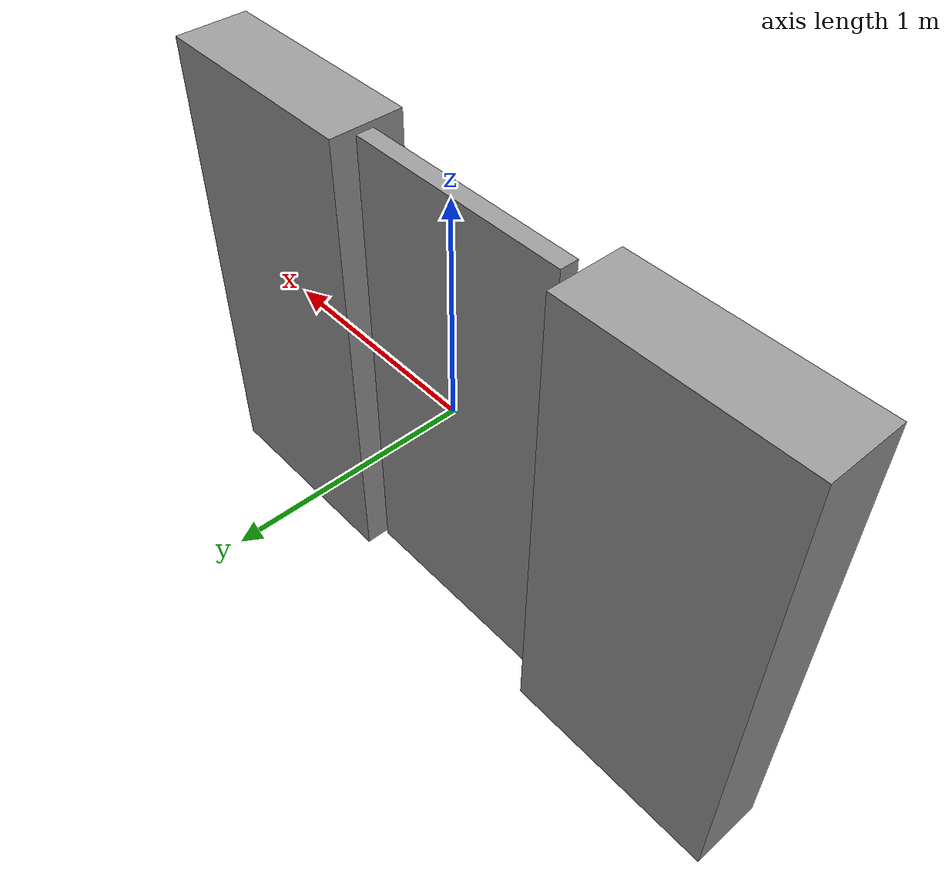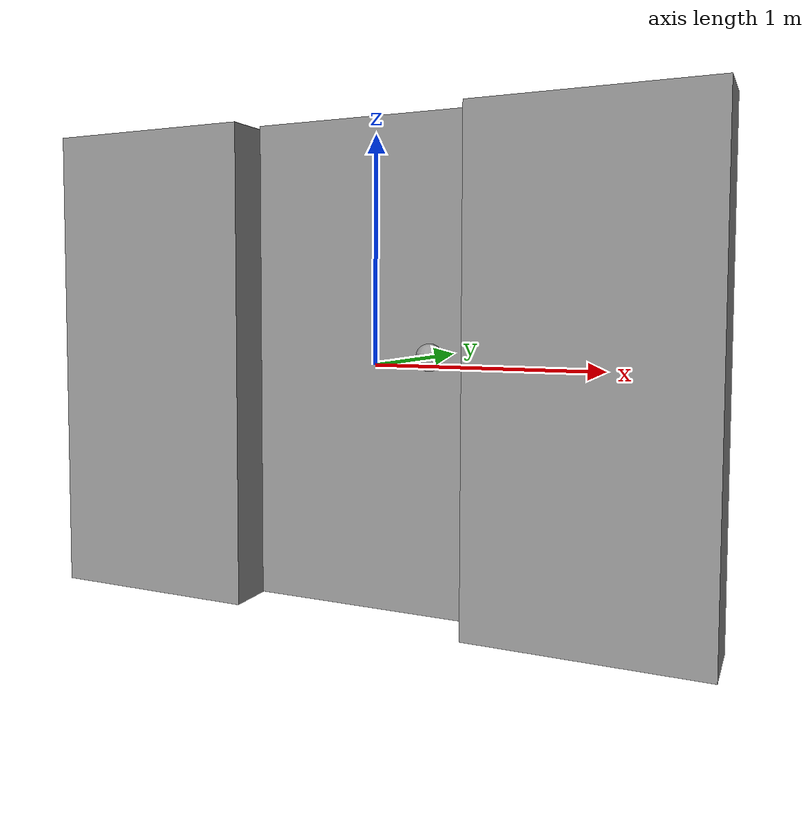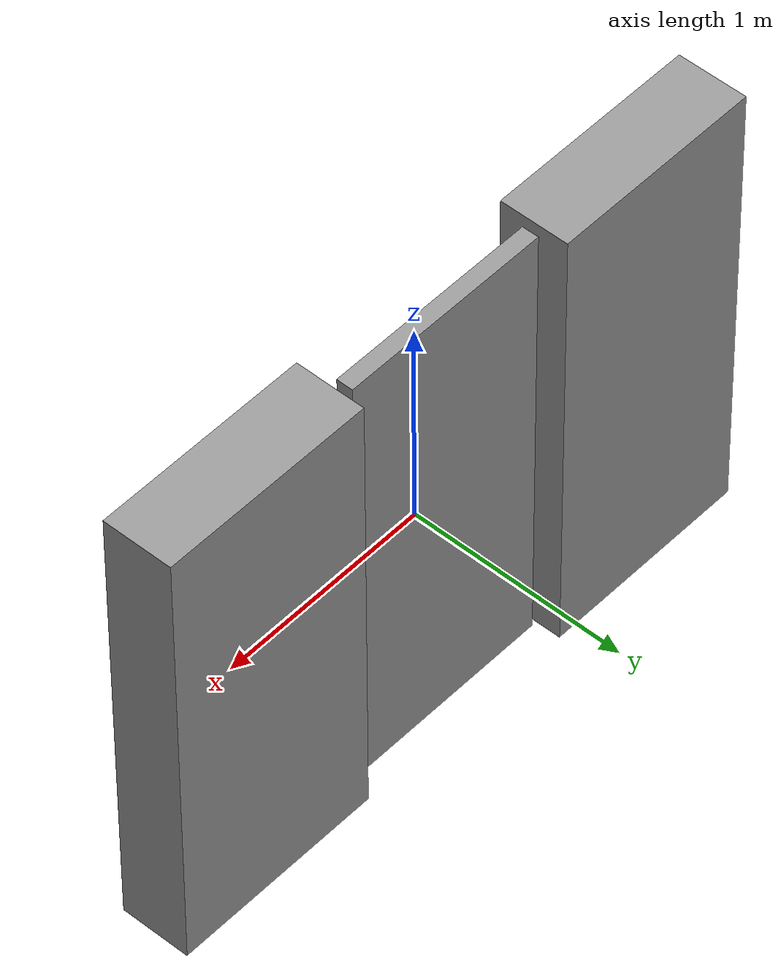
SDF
<?xml version='1.0'?>
<sdf version='1.6'>
  <model name='1'>
    <link name='link_0'>
      <inertial>
        <mass>0.71568</mass>
        <inertia>
          <ixx>0.29641</ixx>
          <ixy>0</ixy>
          <ixz>0</ixz>
          <iyy>0.349772</iyy>
          <iyz>0</iyz>
          <izz>0.0659187</izz>
        </inertia>
        <pose frame=''>0 0 0 0 -0 0</pose>
      </inertial>
      <pose frame=''>-1.13203 0.015868 -0.019431 0 -0 0</pose>
      <visual name='visual'>
        <pose frame=''>0 0 0 0 -0 0</pose>
        <geometry>
          <box>
            <size>1 0.324463 2.20561</size>
          </box>
        </geometry>
        <material>
          <lighting>1</lighting>
          <script>
            <uri>file://media/materials/scripts/gazebo.material</uri>
            <name>Gazebo/Grey</name>
          </script>
          <emissive>0 0 0 1</emissive>
        </material>
        <transparency>0</transparency>
        <cast_shadows>1</cast_shadows>
      </visual>
      <collision name='collision'>
        <laser_retro>0</laser_retro>
        <max_contacts>10</max_contacts>
        <pose frame=''>0 0 0 0 -0 0</pose>
        <geometry>
          <box>
            <size>1 0.324463 2.20561</size>
          </box>
        </geometry>
        <surface>
          <friction>
            <ode>
              <mu>1</mu>
              <mu2>1</mu2>
              <fdir1>0 0 0</fdir1>
              <slip1>0</slip1>
              <slip2>0</slip2>
            </ode>
            <torsional>
              <coefficient>1</coefficient>
              <patch_radius>0</patch_radius>
              <surface_radius>0</surface_radius>
              <use_patch_radius>1</use_patch_radius>
              <ode>
                <slip>0</slip>
              </ode>
            </torsional>
          </friction>
          <bounce>
            <restitution_coefficient>0</restitution_coefficient>
            <threshold>1e+06</threshold>
          </bounce>
          <contact>
            <collide_without_contact>0</collide_without_contact>
            <collide_without_contact_bitmask>1</collide_without_contact_bitmask>
            <collide_bitmask>1</collide_bitmask>
            <ode>
              <soft_cfm>0</soft_cfm>
              <soft_erp>0.2</soft_erp>
              <kp>1e+13</kp>
              <kd>1</kd>
              <max_vel>0.01</max_vel>
              <min_depth>0</min_depth>
            </ode>
            <bullet>
              <split_impulse>1</split_impulse>
              <split_impulse_penetration_threshold>-0.01</split_impulse_penetration_threshold>
              <soft_cfm>0</soft_cfm>
              <soft_erp>0.2</soft_erp>
              <kp>1e+13</kp>
              <kd>1</kd>
            </bullet>
          </contact>
        </surface>
      </collision>
    </link>
    <link name='link_0_clone'>
      <inertial>
        <mass>0.71568</mass>
        <inertia>
          <ixx>0.29641</ixx>
          <ixy>0</ixy>
          <ixz>0</ixz>
          <iyy>0.349772</iyy>
          <iyz>0</iyz>
          <izz>0.0659187</izz>
        </inertia>
        <pose frame=''>0 0 0 0 -0 0</pose>
      </inertial>
      <pose frame=''>0.94829 0.002227 -0.01943 0 -0 0</pose>
      <visual name='visual'>
        <pose frame=''>0 0 0 0 -0 0</pose>
        <geometry>
          <box>
            <size>1 0.324463 2.20561</size>
          </box>
        </geometry>
        <material>
          <lighting>1</lighting>
          <script>
            <uri>file://media/materials/scripts/gazebo.material</uri>
            <name>Gazebo/Grey</name>
          </script>
          <emissive>0 0 0 1</emissive>
          <shader type='pixel'/>
        </material>
        <transparency>0</transparency>
        <cast_shadows>1</cast_shadows>
      </visual>
      <collision name='collision'>
        <laser_retro>0</laser_retro>
        <max_contacts>10</max_contacts>
        <pose frame=''>0 0 0 0 -0 0</pose>
        <geometry>
          <box>
            <size>1 0.324463 2.20561</size>
          </box>
        </geometry>
        <surface>
          <friction>
            <ode>
              <mu>1</mu>
              <mu2>1</mu2>
              <fdir1>0 0 0</fdir1>
              <slip1>0</slip1>
              <slip2>0</slip2>
            </ode>
            <torsional>
              <coefficient>1</coefficient>
              <patch_radius>0</patch_radius>
              <surface_radius>0</surface_radius>
              <use_patch_radius>1</use_patch_radius>
              <ode>
                <slip>0</slip>
              </ode>
            </torsional>
          </friction>
          <bounce>
            <restitution_coefficient>0</restitution_coefficient>
            <threshold>1e+06</threshold>
          </bounce>
          <contact>
            <collide_without_contact>0</collide_without_contact>
            <collide_without_contact_bitmask>1</collide_without_contact_bitmask>
            <collide_bitmask>1</collide_bitmask>
            <ode>
              <soft_cfm>0</soft_cfm>
              <soft_erp>0.2</soft_erp>
              <kp>1e+13</kp>
              <kd>1</kd>
              <max_vel>0.01</max_vel>
              <min_depth>0</min_depth>
            </ode>
            <bullet>
              <split_impulse>1</split_impulse>
              <split_impulse_penetration_threshold>-0.01</split_impulse_penetration_threshold>
              <soft_cfm>0</soft_cfm>
              <soft_erp>0.2</soft_erp>
              <kp>1e+13</kp>
              <kd>1</kd>
            </bullet>
          </contact>
        </surface>
      </collision>
    </link>
    <link name='link_1'>
      <inertial>
        <mass>0.16614</mass>
        <inertia>
          <ixx>0.0656255</ixx>
          <ixy>0</ixy>
          <ixz>0</ixz>
          <iyy>0.0793898</iyy>
          <iyz>0</iyz>
          <izz>0.0139257</izz>
        </inertia>
        <pose frame=''>0 0 0 0 -0 0</pose>
      </inertial>
      <pose frame=''>-0.088127 0.0381 -0.004538 0 -0 0</pose>
      <visual name='visual'>
        <pose frame=''>0 0 0 0 -0 0</pose>
        <geometry>
          <box>
            <size>1 0.076351 2.17582</size>
          </box>
        </geometry>
        <material>
          <lighting>1</lighting>
          <script>
            <uri>file://media/materials/scripts/gazebo.material</uri>
            <name>Gazebo/Grey</name>
          </script>
          <emissive>0 0 0 1</emissive>
        </material>
        <transparency>0</transparency>
        <cast_shadows>1</cast_shadows>
      </visual>
      <collision name='collision'>
        <laser_retro>0</laser_retro>
        <max_contacts>10</max_contacts>
        <pose frame=''>0 0 0 0 -0 0</pose>
        <geometry>
          <box>
            <size>1 0.076351 2.17582</size>
          </box>
        </geometry>
        <surface>
          <friction>
            <ode>
              <mu>1</mu>
              <mu2>1</mu2>
              <fdir1>0 0 0</fdir1>
              <slip1>0</slip1>
              <slip2>0</slip2>
            </ode>
            <torsional>
              <coefficient>1</coefficient>
              <patch_radius>0</patch_radius>
              <surface_radius>0</surface_radius>
              <use_patch_radius>1</use_patch_radius>
              <ode>
                <slip>0</slip>
              </ode>
            </torsional>
          </friction>
          <bounce>
            <restitution_coefficient>0</restitution_coefficient>
            <threshold>1e+06</threshold>
          </bounce>
          <contact>
            <collide_without_contact>0</collide_without_contact>
            <collide_without_contact_bitmask>1</collide_without_contact_bitmask>
            <collide_bitmask>1</collide_bitmask>
            <ode>
              <soft_cfm>0</soft_cfm>
              <soft_erp>0.2</soft_erp>
              <kp>1e+13</kp>
              <kd>1</kd>
              <max_vel>0.01</max_vel>
              <min_depth>0</min_depth>
            </ode>
            <bullet>
              <split_impulse>1</split_impulse>
              <split_impulse_penetration_threshold>-0.01</split_impulse_penetration_threshold>
              <soft_cfm>0</soft_cfm>
              <soft_erp>0.2</soft_erp>
              <kp>1e+13</kp>
              <kd>1</kd>
            </bullet>
          </contact>
        </surface>
      </collision>
    </link>
    <link name='link_3'>
      <inertial>
        <mass>0.00165965</mass>
        <inertia>
          <ixx>2.32654e-06</ixx>
          <ixy>0</ixy>
          <ixz>0</ixz>
          <iyy>2.32654e-06</iyy>
          <iyz>0</iyz>
          <izz>2.32654e-06</izz>
        </inertia>
        <pose frame=''>0 0 0 0 -0 0</pose>
      </inertial>
      <pose frame=''>0.271873 -0.056195 0.0434 0 -0 0</pose>
      <visual name='visual'>
        <pose frame=''>0 0 0 0 -0 0</pose>
        <geometry>
          <sphere>
            <radius>0.0591993</radius>
          </sphere>
        </geometry>
        <material>
          <lighting>1</lighting>
          <script>
            <uri>file://media/materials/scripts/gazebo.material</uri>
            <name>Gazebo/Grey</name>
          </script>
          <emissive>0 0 0 1</emissive>
        </material>
        <transparency>0</transparency>
        <cast_shadows>1</cast_shadows>
      </visual>
      <collision name='collision'>
        <laser_retro>0</laser_retro>
        <max_contacts>10</max_contacts>
        <pose frame=''>0 0 0 0 -0 0</pose>
        <geometry>
          <sphere>
            <radius>0.059199</radius>
          </sphere>
        </geometry>
        <surface>
          <friction>
            <ode>
              <mu>1</mu>
              <mu2>1</mu2>
              <fdir1>0 0 0</fdir1>
              <slip1>0</slip1>
              <slip2>0</slip2>
            </ode>
            <torsional>
              <coefficient>1</coefficient>
              <patch_radius>0</patch_radius>
              <surface_radius>0</surface_radius>
              <use_patch_radius>1</use_patch_radius>
              <ode>
                <slip>0</slip>
              </ode>
            </torsional>
          </friction>
          <bounce>
            <restitution_coefficient>0</restitution_coefficient>
            <threshold>1e+06</threshold>
          </bounce>
          <contact>
            <collide_without_contact>0</collide_without_contact>
            <collide_without_contact_bitmask>1</collide_without_contact_bitmask>
            <collide_bitmask>1</collide_bitmask>
            <ode>
              <soft_cfm>0</soft_cfm>
              <soft_erp>0.2</soft_erp>
              <kp>1e+13</kp>
              <kd>1</kd>
              <max_vel>0.01</max_vel>
              <min_depth>0</min_depth>
            </ode>
            <bullet>
              <split_impulse>1</split_impulse>
              <split_impulse_penetration_threshold>-0.01</split_impulse_penetration_threshold>
              <soft_cfm>0</soft_cfm>
              <soft_erp>0.2</soft_erp>
              <kp>1e+13</kp>
              <kd>1</kd>
            </bullet>
          </contact>
        </surface>
      </collision>
    </link>
    <joint name='link_0_JOINT_0' type='revolute'>
      <parent>link_0</parent>
      <child>link_1</child>
      <pose frame=''>-0.5 0 0 0 -0 0</pose>
      <axis>
        <xyz>0 0 1</xyz>
        <use_parent_model_frame>0</use_parent_model_frame>
        <limit>
          <lower>-1.79769e+308</lower>
          <upper>1.79769e+308</upper>
          <effort>-1</effort>
          <velocity>-1</velocity>
        </limit>
        <dynamics>
          <spring_reference>0</spring_reference>
          <spring_stiffness>0</spring_stiffness>
          <damping>0</damping>
          <friction>0</friction>
        </dynamics>
      </axis>
      <physics>
        <ode>
          <limit>
            <cfm>0</cfm>
            <erp>0.2</erp>
          </limit>
          <suspension>
            <cfm>0</cfm>
            <erp>0.2</erp>
          </suspension>
        </ode>
      </physics>
    </joint>
    <joint name='link_1_JOINT_2' type='fixed'>
      <parent>link_1</parent>
      <child>link_3</child>
      <pose frame=''>0 0 0 0 -0 0</pose>
      <physics>
        <ode>
          <limit>
            <cfm>0</cfm>
            <erp>0.2</erp>
          </limit>
          <suspension>
            <cfm>0</cfm>
            <erp>0.2</erp>
          </suspension>
        </ode>
      </physics>
    </joint>
    <static>0</static>
    <allow_auto_disable>1</allow_auto_disable>
  </model>
</sdf>
